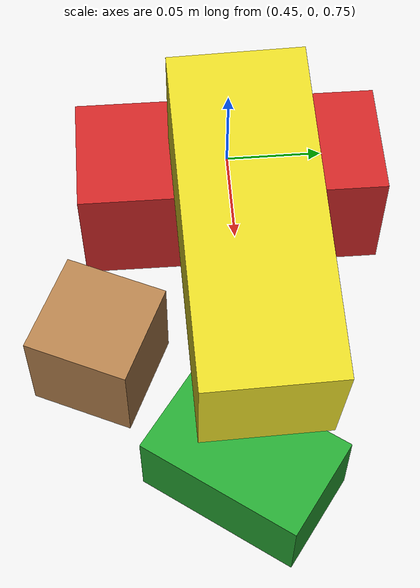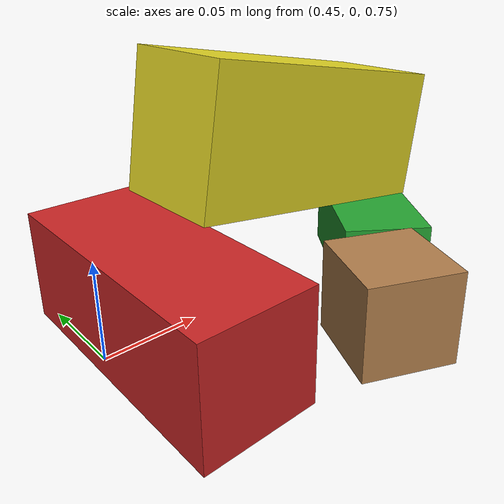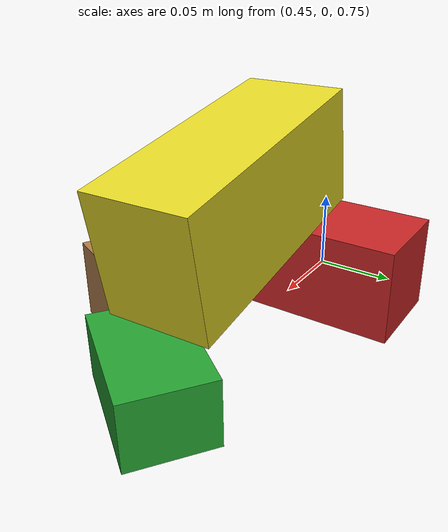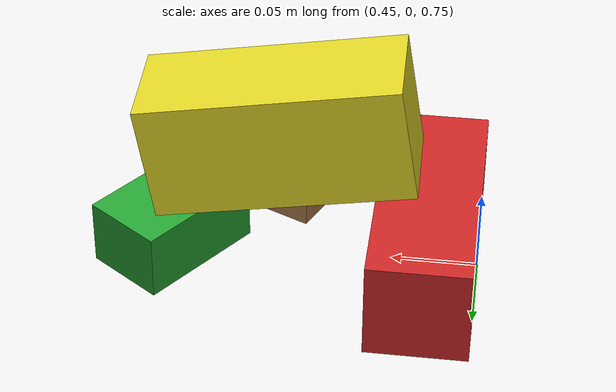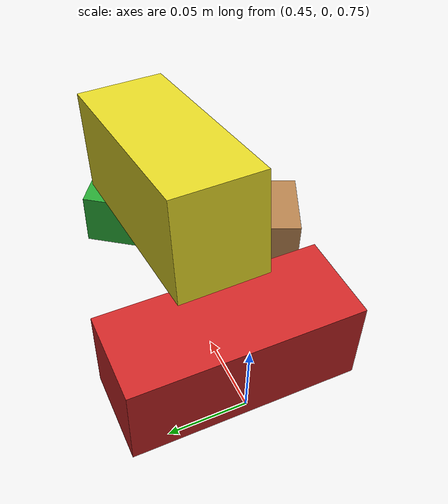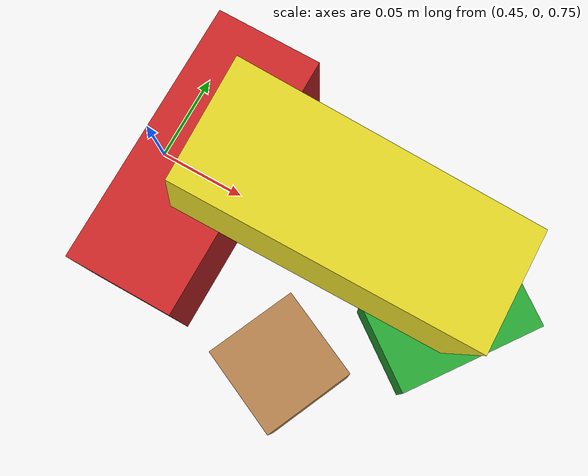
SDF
<sdf version="1.4">
 <world name="default">
  <light name="sun" type="directional">
   <pose>0 0 10 0 -0 0</pose>
   <diffuse>0.8 0.8 0.8 1</diffuse>
   <specular>0.2 0.2 0.2 1</specular>
   <attenuation>
    <range>1000</range>
    <constant>0.9</constant>
    <linear>0.01</linear>
    <quadratic>0.001</quadratic>
   </attenuation>
   <direction>-0.5 0.1 -0.9</direction>
  </light>
  <scene><shadows>0</shadows><ambient>0.4 0.4 0.4 1</ambient><background>0.7 0.7 0.7 1</background></scene>
  <model name="ground_plane">
   <static>1</static>
   <link name="link">
    <collision name="collision">
     <geometry><plane><normal>0 0 1</normal><size>100 100</size></plane></geometry>
     <surface><friction><ode><mu>100</mu><mu2>50</mu2></ode></friction></surface>
    </collision>
    <visual name="visual">
     <cast_shadows>0</cast_shadows>
     <geometry><plane><normal>0 0 1</normal><size>100 100</size></plane></geometry>
     <material>
      <script><uri>file://media/materials/scripts/gazebo.material</uri><name>Gazebo/Grey</name></script>
     </material>
    </visual>
    <velocity_decay><linear>0</linear><angular>0</angular></velocity_decay>
   </link>
  </model>
  <physics type="ode">
   <max_step_size>0.001</max_step_size>
   <real_time_factor>1</real_time_factor>
   <real_time_update_rate>1000</real_time_update_rate>
   <gravity>0 0 -9.8</gravity>
  </physics>
  <spherical_coordinates>
   <surface_model>EARTH_WGS84</surface_model>
   <latitude_deg>0</latitude_deg>
   <longitude_deg>0</longitude_deg>
   <elevation>0</elevation>
   <heading_deg>0</heading_deg>
  </spherical_coordinates>
  <model name="wood_cube_5cm">
   <link name="link">
    <pose>0 0 0.05 0 -0 0</pose>
    <inertial>
     <mass>0.01</mass>
     <inertia>
      <ixx>0.000101167</ixx>
      <ixy>0</ixy>
      <ixz>0</ixz>
      <iyy>6.1167e-05</iyy>
      <iyz>0</iyz>
      <izz>6.1167e-05</izz>
     </inertia>
    </inertial>
    <collision name="collision">
     <geometry><box><size>0.05 0.05 0.05</size></box></geometry>
     <surface><contact><ode><max_vel>0.1</max_vel><min_depth>0.001</min_depth></ode></contact></surface>
    </collision>
    <visual name="visual">
     <geometry><box><size>0.05 0.05 0.05</size></box></geometry>
     <material>
      <script><uri>file://media/materials/scripts/gazebo.material</uri><name>Gazebo/Wood</name></script>
     </material>
    </visual>
    <velocity_decay><linear>0</linear><angular>0</angular></velocity_decay>
   </link>
   <pose>0.567525 -0.070968 0.714992 -0.002558 -0.003066 -0.430894</pose>
   <static>0</static>
  </model>
  <model name="rectangle_green">
   <link name="link">
    <pose>0 0 0.05 0 -0 0</pose>
    <inertial>
     <mass>0.01</mass>
     <inertia>
      <ixx>0.000101167</ixx>
      <ixy>0</ixy>
      <ixz>0</ixz>
      <iyy>6.1167e-05</iyy>
      <iyz>0</iyz>
      <izz>6.1167e-05</izz>
     </inertia>
    </inertial>
    <collision name="collision">
     <geometry><box><size>0.05 0.08 0.04</size></box></geometry>
     <surface><contact><ode><max_vel>0.1</max_vel><min_depth>0.001</min_depth></ode></contact></surface>
    </collision>
    <visual name="visual">
     <geometry><box><size>0.05 0.08 0.04</size></box></geometry>
     <material>
      <script><uri>file://media/materials/scripts/gazebo.material</uri><name>Gazebo/Green</name></script>
     </material>
    </visual>
    <velocity_decay><linear>0</linear><angular>0</angular></velocity_decay>
   </link>
   <pose>0.631645 -0.006616 0.709951 -0.000331 0.000144 2.51553</pose>
   <static>0</static>
  </model>
  <model name="wood_rectangle">
   <link name="link">
    <pose>0 0 0.05 0 -0 0</pose>
    <inertial>
     <mass>0.01</mass>
     <inertia>
      <ixx>0.000101167</ixx>
      <ixy>0</ixy>
      <ixz>0</ixz>
      <iyy>6.1167e-05</iyy>
      <iyz>0</iyz>
      <izz>6.1167e-05</izz>
     </inertia>
    </inertial>
    <collision name="collision">
     <geometry><box><size>0.06 0.15 0.06</size></box></geometry>
     <surface><contact><ode><max_vel>0.1</max_vel><min_depth>0.001</min_depth></ode></contact></surface>
    </collision>
    <visual name="visual">
     <geometry><box><size>0.06 0.15 0.06</size></box></geometry>
     <material>
      <script><uri>file://media/materials/scripts/gazebo.material</uri><name>Gazebo/Red</name></script>
     </material>
    </visual>
    <velocity_decay><linear>0</linear><angular>0</angular></velocity_decay>
   </link>
   <pose>0.479883 -0.002043 0.719733 -0.000536 -5.7e-05 3.13931</pose>
   <static>0</static>
  </model>
  <model name="wood_cube_10cm">
   <link name="link">
    <pose>0 0 0.05 0 -0 0</pose>
    <inertial>
     <mass>0.01</mass>
     <inertia>
      <ixx>0.000101167</ixx>
      <ixy>0</ixy>
      <ixz>0</ixz>
      <iyy>6.1167e-05</iyy>
      <iyz>0</iyz>
      <izz>6.1167e-05</izz>
     </inertia>
    </inertial>
    <collision name="collision">
     <geometry><box><size>0.06 0.15 0.07</size></box></geometry>
     <surface><contact><ode><max_vel>0.1</max_vel><min_depth>0.001</min_depth></ode></contact></surface>
    </collision>
    <visual name="visual">
     <geometry><box><size>0.06 0.15 0.07</size></box></geometry>
     <material>
      <script><uri>file://media/materials/scripts/gazebo.material</uri><name>Gazebo/Yellow</name></script>
     </material>
    </visual>
    <velocity_decay><linear>0</linear><angular>0</angular></velocity_decay>
   </link>
   <pose>0.557342 6.2e-05 0.789665 0.160854 -0.004954 1.59553</pose>
   <static>0</static>
  </model>
 </world>
</sdf>
